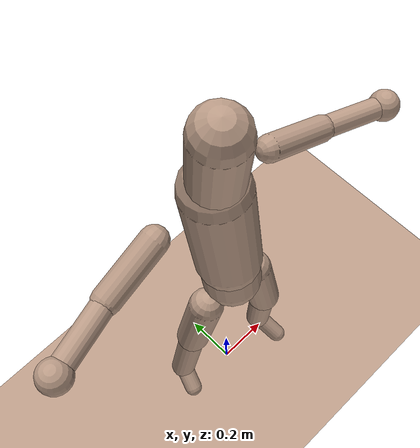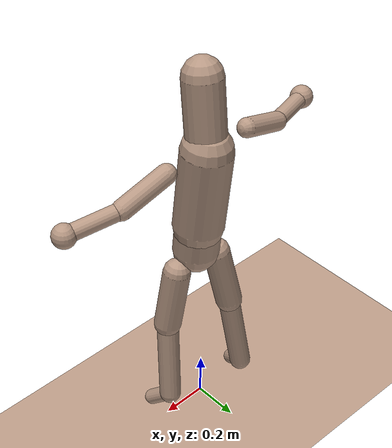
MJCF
<?xml version="1.0" ?>
<mujoco model="grandpa">
  <compiler angle="degree" autolimits="true"/>
  <option timestep="0.005" iterations="20" solver="Newton" integrator="implicitfast"/>
  <default>
    <geom type="capsule" condim="3" friction="1.0 0.05 0.05" rgba="0.72 0.60 0.52 1" density="0"/>
    <joint type="hinge" damping="2" stiffness="0" armature="0.2" limited="true"/>
    <position ctrllimited="true" dampratio="1"/>
  </default>
  <asset>
    <texture name="grid" type="2d" builtin="checker" rgb1="0.24 0.26 0.28" rgb2="0.20 0.22 0.24" width="512" height="512"/>
    <material name="grid" texture="grid" texrepeat="8 8" reflectance="0.05"/>
  </asset>
  <worldbody>
    <light pos="0 0 4" dir="0 0 -1" directional="true"/>
    <geom name="floor" type="plane" size="20 20 0.1" material="grid" condim="3" friction="1.0 0.05 0.05"/>
    <body name="Pelvis" pos="0.00507 -0.02870 0.83110">
      <freejoint name="root"/>
      <geom name="g_Pelvis" fromto="0.00000 0.00000 0.00000 -0.00376 0.01104 0.13171" size="0.0979" mass="9.8710"/>
      <body name="Torso" pos="-0.00376 0.01104 0.13171">
        <geom name="g_Torso" fromto="0.00000 0.00000 0.00000 -0.01449 0.03084 0.36795" size="0.1077" mass="23.2674"/>
        <joint name="Torso_pitch" axis="1 0 0" range="-26.4 33.6"/>
        <joint name="Torso_roll" axis="0 1 0" range="-20.0 20.0"/>
        <joint name="Torso_yaw" axis="0 0 1" range="-35.0 35.0"/>
        <body name="Head" pos="-0.01449 0.03084 0.36795">
          <geom name="g_Head" fromto="0.00000 0.00000 0.00000 -0.01642 -0.04430 0.29508" size="0.0832" mass="4.9355"/>
          <joint name="Head_pitch" axis="1 0 0" range="-46.5 33.5"/>
          <joint name="Head_roll" axis="0 1 0" range="-30.0 30.0"/>
          <joint name="Head_yaw" axis="0 0 1" range="-45.0 45.0"/>
        </body>
        <body name="UpperArmL" pos="0.18740 0.02632 0.35727">
          <geom name="g_UpperArmL" fromto="0.00000 0.00000 0.00000 0.19922 -0.02323 -0.07690" size="0.0411" mass="2.1152"/>
          <joint name="UpperArmL_pitch" axis="1 0 0" range="-60.0 120.0"/>
          <joint name="UpperArmL_roll" axis="0 1 0" range="-103.8 20.0"/>
          <joint name="UpperArmL_yaw" axis="0 0 1" range="-46.6 73.4"/>
          <body name="ForearmL" pos="0.19922 -0.02323 -0.07690">
            <geom name="g_ForearmL" fromto="0.00000 0.00000 0.00000 0.22017 -0.06136 -0.03494" size="0.0343" mass="1.4102"/>
            <joint name="ForearmL_pitch" axis="1 0 0" range="-20.0 140.0"/>
            <body name="GloveL" pos="0.22017 -0.06136 -0.03494">
              <geom name="g_GloveL" type="sphere" pos="0 0 0" size="0.0490" mass="0.7051"/>
              <joint name="GloveL_pitch" axis="1 0 0" range="-60.0 60.0"/>
              <joint name="GloveL_yaw" axis="0 0 1" range="-25.0 25.0"/>
            </body>
          </body>
        </body>
        <body name="UpperArmR" pos="-0.22849 0.03014 0.37475">
          <geom name="g_UpperArmR" fromto="0.00000 0.00000 0.00000 -0.18523 -0.01432 -0.05939" size="0.0411" mass="2.1152"/>
          <joint name="UpperArmR_pitch" axis="1 0 0" range="-60.0 120.0"/>
          <joint name="UpperArmR_roll" axis="0 1 0" range="-20.0 94.3"/>
          <joint name="UpperArmR_yaw" axis="0 0 1" range="-72.1 47.9"/>
          <body name="ForearmR" pos="-0.18523 -0.01432 -0.05939">
            <geom name="g_ForearmR" fromto="0.00000 0.00000 0.00000 -0.21319 -0.06050 -0.00351" size="0.0343" mass="1.4102"/>
            <joint name="ForearmR_pitch" axis="1 0 0" range="-20.0 140.0"/>
            <body name="GloveR" pos="-0.21319 -0.06050 -0.00351">
              <geom name="g_GloveR" type="sphere" pos="0 0 0" size="0.0490" mass="0.7051"/>
              <joint name="GloveR_pitch" axis="1 0 0" range="-60.0 60.0"/>
              <joint name="GloveR_yaw" axis="0 0 1" range="-25.0 25.0"/>
            </body>
          </body>
        </body>
      </body>
      <body name="ThighL" pos="0.10138 -0.00434 -0.06924">
        <geom name="g_ThighL" fromto="0.00000 0.00000 0.00000 0.04147 -0.01734 -0.27696" size="0.0588" mass="8.1083"/>
        <joint name="ThighL_pitch" axis="1 0 0" range="-98.0 32.0"/>
        <joint name="ThighL_roll" axis="0 1 0" range="-20.0 45.0"/>
        <joint name="ThighL_yaw" axis="0 0 1" range="-30.0 30.0"/>
        <body name="ShinL" pos="0.04147 -0.01734 -0.27696">
          <geom name="g_ShinL" fromto="0.00000 0.00000 0.00000 0.03760 0.05063 -0.36838" size="0.0470" mass="3.5254"/>
          <joint name="ShinL_pitch" axis="1 0 0" range="-10.0 134.1"/>
          <body name="FootL" pos="0.03760 0.05063 -0.36838">
            <geom name="g_FootL" fromto="0.00000 0.00000 0.00000 0.02672 -0.09170 -0.08225" size="0.0343" mass="1.0576"/>
            <joint name="FootL_pitch" axis="1 0 0" range="-18.5 46.5"/>
            <joint name="FootL_roll" axis="0 1 0" range="-35.8 10.0"/>
          </body>
        </body>
      </body>
      <body name="ThighR" pos="-0.10876 0.00949 -0.06924">
        <geom name="g_ThighR" fromto="0.00000 0.00000 0.00000 -0.04425 0.03796 -0.27696" size="0.0588" mass="8.1083"/>
        <joint name="ThighR_pitch" axis="1 0 0" range="-117.1 12.9"/>
        <joint name="ThighR_roll" axis="0 1 0" range="-49.3 15.7"/>
        <joint name="ThighR_yaw" axis="0 0 1" range="-30.0 30.0"/>
        <body name="ShinR" pos="-0.04425 0.03796 -0.27696">
          <geom name="g_ShinR" fromto="0.00000 0.00000 0.00000 -0.03760 0.04603 -0.36838" size="0.0470" mass="3.5254"/>
          <joint name="ShinR_pitch" axis="1 0 0" range="-10.0 130.0"/>
          <body name="FootR" pos="-0.03760 0.04603 -0.36838">
            <geom name="g_FootR" fromto="0.00000 0.00000 0.00000 -0.02471 -0.08098 -0.06084" size="0.0343" mass="1.0576"/>
            <joint name="FootR_pitch" axis="1 0 0" range="-25.6 39.4"/>
            <joint name="FootR_roll" axis="0 1 0" range="-17.7 22.3"/>
          </body>
        </body>
      </body>
    </body>
  </worldbody>
  <actuator>
    <position name="a_Torso_pitch" joint="Torso_pitch" kp="400" ctrlrange="-0.461437 0.585760"/>
    <position name="a_Torso_roll" joint="Torso_roll" kp="400" ctrlrange="-0.349066 0.349066"/>
    <position name="a_Torso_yaw" joint="Torso_yaw" kp="400" ctrlrange="-0.610865 0.610865"/>
    <position name="a_Head_pitch" joint="Head_pitch" kp="60" ctrlrange="-0.811622 0.584642"/>
    <position name="a_Head_roll" joint="Head_roll" kp="60" ctrlrange="-0.523599 0.523599"/>
    <position name="a_Head_yaw" joint="Head_yaw" kp="60" ctrlrange="-0.785398 0.785398"/>
    <position name="a_ThighL_pitch" joint="ThighL_pitch" kp="500" ctrlrange="-1.710334 0.558594"/>
    <position name="a_ThighL_roll" joint="ThighL_roll" kp="500" ctrlrange="-0.349066 0.785398"/>
    <position name="a_ThighL_yaw" joint="ThighL_yaw" kp="500" ctrlrange="-0.523599 0.523599"/>
    <position name="a_ShinL_pitch" joint="ShinL_pitch" kp="400" ctrlrange="-0.174533 2.340055"/>
    <position name="a_FootL_pitch" joint="FootL_pitch" kp="200" ctrlrange="-0.322247 0.812217"/>
    <position name="a_FootL_roll" joint="FootL_roll" kp="200" ctrlrange="-0.625602 0.174533"/>
    <position name="a_ThighR_pitch" joint="ThighR_pitch" kp="500" ctrlrange="-2.044190 0.224738"/>
    <position name="a_ThighR_roll" joint="ThighR_roll" kp="500" ctrlrange="-0.860161 0.274303"/>
    <position name="a_ThighR_yaw" joint="ThighR_yaw" kp="500" ctrlrange="-0.523599 0.523599"/>
    <position name="a_ShinR_pitch" joint="ShinR_pitch" kp="400" ctrlrange="-0.174533 2.268928"/>
    <position name="a_FootR_pitch" joint="FootR_pitch" kp="200" ctrlrange="-0.446743 0.687721"/>
    <position name="a_FootR_roll" joint="FootR_roll" kp="200" ctrlrange="-0.309741 0.388391"/>
    <position name="a_UpperArmL_pitch" joint="UpperArmL_pitch" kp="100" ctrlrange="-1.047198 2.094395"/>
    <position name="a_UpperArmL_roll" joint="UpperArmL_roll" kp="100" ctrlrange="-1.811620 0.349066"/>
    <position name="a_UpperArmL_yaw" joint="UpperArmL_yaw" kp="100" ctrlrange="-0.812783 1.281613"/>
    <position name="a_ForearmL_pitch" joint="ForearmL_pitch" kp="60" ctrlrange="-0.349066 2.443461"/>
    <position name="a_GloveL_pitch" joint="GloveL_pitch" kp="20" ctrlrange="-1.047198 1.047198"/>
    <position name="a_GloveL_yaw" joint="GloveL_yaw" kp="20" ctrlrange="-0.436332 0.436332"/>
    <position name="a_UpperArmR_pitch" joint="UpperArmR_pitch" kp="100" ctrlrange="-1.047198 2.094395"/>
    <position name="a_UpperArmR_roll" joint="UpperArmR_roll" kp="100" ctrlrange="-0.349066 1.645114"/>
    <position name="a_UpperArmR_yaw" joint="UpperArmR_yaw" kp="100" ctrlrange="-1.259134 0.835261"/>
    <position name="a_ForearmR_pitch" joint="ForearmR_pitch" kp="60" ctrlrange="-0.349066 2.443461"/>
    <position name="a_GloveR_pitch" joint="GloveR_pitch" kp="20" ctrlrange="-1.047198 1.047198"/>
    <position name="a_GloveR_yaw" joint="GloveR_yaw" kp="20" ctrlrange="-0.436332 0.436332"/>
  </actuator>
  <sensor>
    <framepos name="s_FootL_pos" objtype="body" objname="FootL"/>
    <framepos name="s_FootR_pos" objtype="body" objname="FootR"/>
    <framepos name="s_Head_pos" objtype="body" objname="Head"/>
    <framezaxis name="s_Pelvis_up" objtype="body" objname="Pelvis"/>
    <subtreecom name="s_com" body="Pelvis"/>
  </sensor>
</mujoco>
